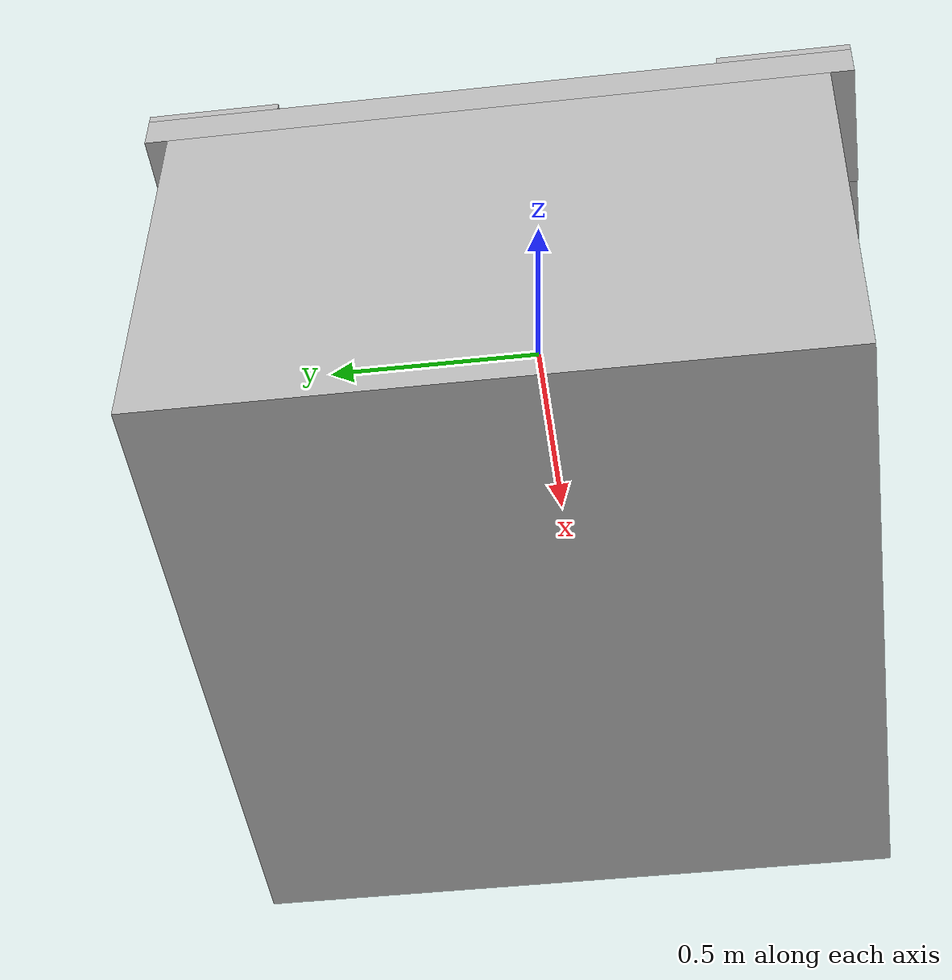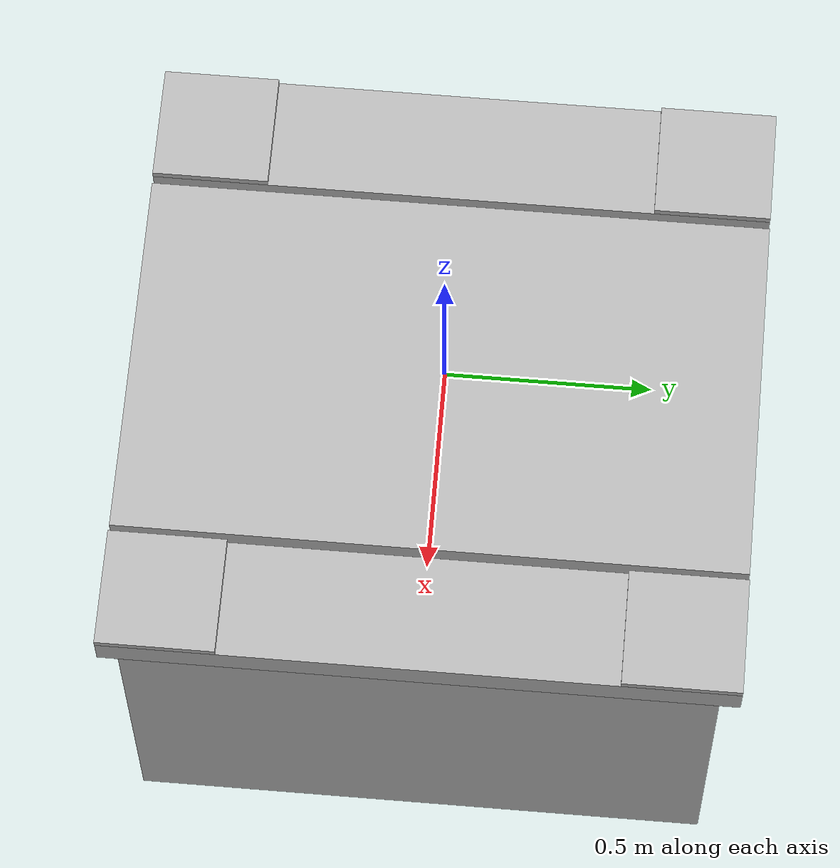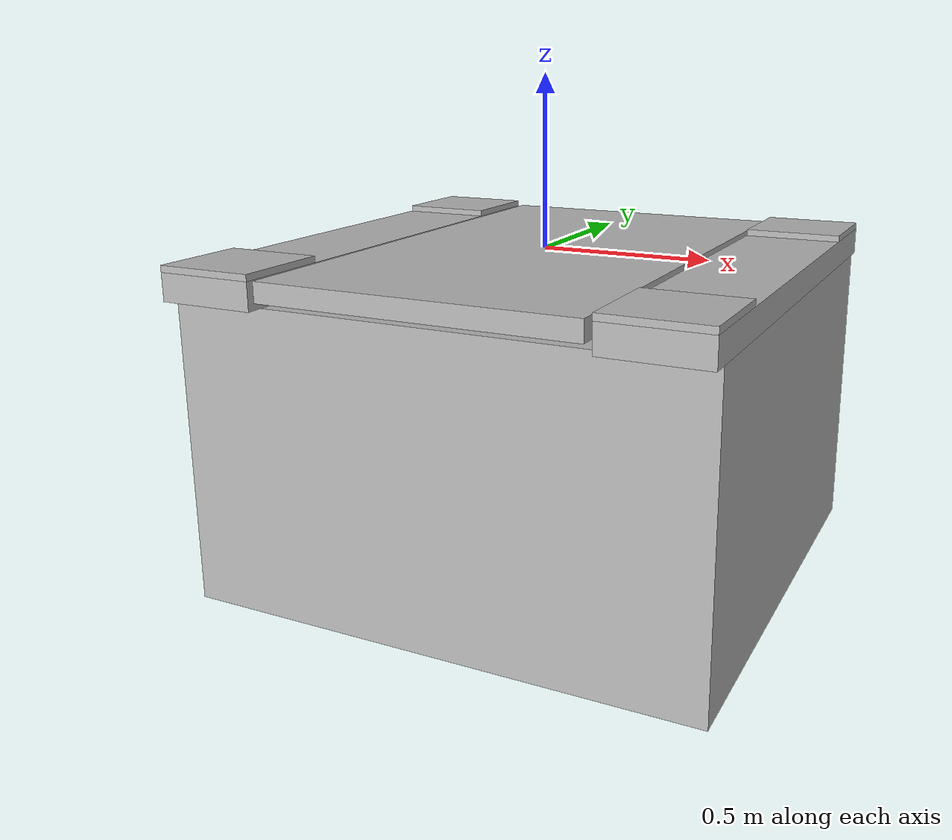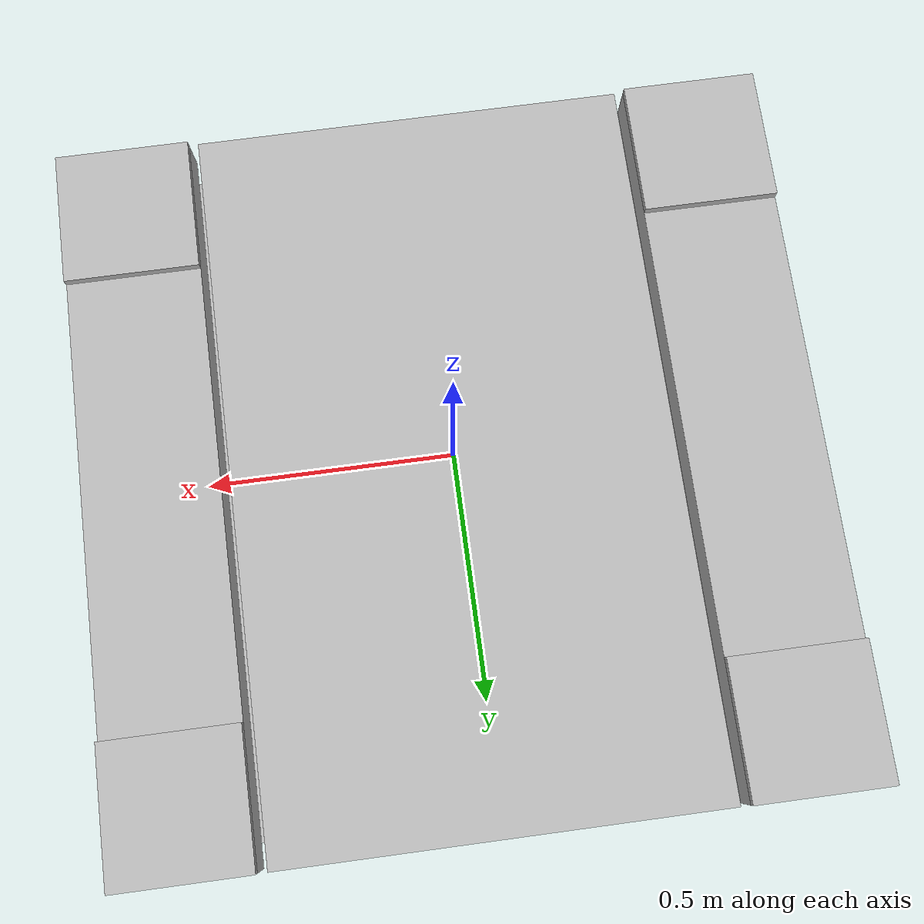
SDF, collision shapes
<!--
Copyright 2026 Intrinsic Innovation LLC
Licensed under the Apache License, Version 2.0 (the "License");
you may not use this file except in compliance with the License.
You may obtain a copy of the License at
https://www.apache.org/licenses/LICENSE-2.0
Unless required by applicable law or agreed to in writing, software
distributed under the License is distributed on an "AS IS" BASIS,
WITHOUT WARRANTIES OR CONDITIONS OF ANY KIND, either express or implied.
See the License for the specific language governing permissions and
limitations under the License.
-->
<?xml version="1.0" encoding="UTF-8"?>

<sdf version="1.9">
  <model name="quad_table">
    <link name="table_base">
      <inertial>
        <mass>1</mass>
        <inertia>
          <ixx>1</ixx>
          <ixy>0</ixy>
          <ixz>0</ixz>
          <iyy>1</iyy>
          <iyz>0</iyz>
          <izz>1</izz>
        </inertia>
      </inertial>
      <visual name="visual1">
        <geometry>
          <mesh>
            <uri>model://intrinsic/models/assets/quad_table/quad_table.dae</uri>
          </mesh>
        </geometry>
      </visual>
      <collision name="base_collision">
        <pose>0 0 -0.5296 0 0 0</pose>
        <geometry>
          <box>
            <size>1.524 1.42365 0.8924</size>
          </box>
        </geometry>
      </collision>
      <collision name="thorlabs_collision">
        <pose>0 0 -0.029 0 0 0</pose>
        <geometry>
          <box>
            <size>0.9144 1.524 0.058</size>
          </box>
        </geometry>
      </collision>
      <collision name="right_rails_collision">
        <pose>0.6195 0 -0.0434 0 0 0</pose>
        <geometry>
          <box>
            <size>0.285 1.524 0.08</size>
          </box>
        </geometry>
      </collision>
      <collision name="left_rails_collision">
        <pose>-0.6195 0 -0.0434 0 0 0</pose>
        <geometry>
          <box>
            <size>0.285 1.524 0.08</size>
          </box>
        </geometry>
      </collision>
    </link>

    <include>
      <pose>-0.6195 0.6195 -0.0034 0 0 0</pose>
      <uri>model://intrinsic/models/assets/universal_plate</uri>
      <name>northwest_plate</name>
    </include>
    <joint name="nwplate_mount" type="fixed">
        <parent>table_base</parent>
        <child>northwest_plate::body</child>
    </joint>

    <include>
      <pose>0.6195 0.6195 -0.0034 0 0 0</pose>
      <uri>model://intrinsic/models/assets/universal_plate</uri>
      <name>northeast_plate</name>
    </include>
    <joint name="neplate_mount" type="fixed">
        <parent>table_base</parent>
        <child>northeast_plate::body</child>
    </joint>

    <include>
      <pose>-0.6195 -0.6195 -0.0034 0 0 0</pose>
      <uri>model://intrinsic/models/assets/universal_plate</uri>
      <name>southwest_plate</name>
    </include>
    <joint name="swplate_mount" type="fixed">
        <parent>table_base</parent>
        <child>southwest_plate::body</child>
    </joint>

    <include>
      <pose>0.6195 -0.6195 -0.0034 0 0 0</pose>
      <uri>model://intrinsic/models/assets/universal_plate</uri>
      <name>southeast_plate</name>
    </include>
    <joint name="seplate_mount" type="fixed">
        <parent>table_base</parent>
        <child>southeast_plate::body</child>
    </joint>
  </model>
</sdf>

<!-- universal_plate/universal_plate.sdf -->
<sdf version="1.6">
  <model name="universal_plate">
    <link name="body">
      <inertial>
        <!-- These values are not accurate and should be recomputed if needed. -->
        <mass>0.1</mass>
        <inertia>
          <ixx>0.1</ixx>
          <ixy>0</ixy>
          <ixz>0</ixz>
          <iyy>0.1</iyy>
          <iyz>0</iyz>
          <izz>0.1</izz>
        </inertia>
      </inertial>

      <visual name="visual">
        <pose>0 0 0 0 0 0</pose>
        <geometry>
          <mesh>
            <uri>model://intrinsic/models/assets/universal_plate/universal_plate.dae</uri>
          </mesh>
        </geometry>
      </visual>

      <collision name="plate">
        <pose>0 0 0.009525 0 0 0</pose>
        <geometry>
          <box>
            <size>0.285 0.285 0.01905</size>
          </box>
        </geometry>
      </collision>
    </link>
  </model>
</sdf>
